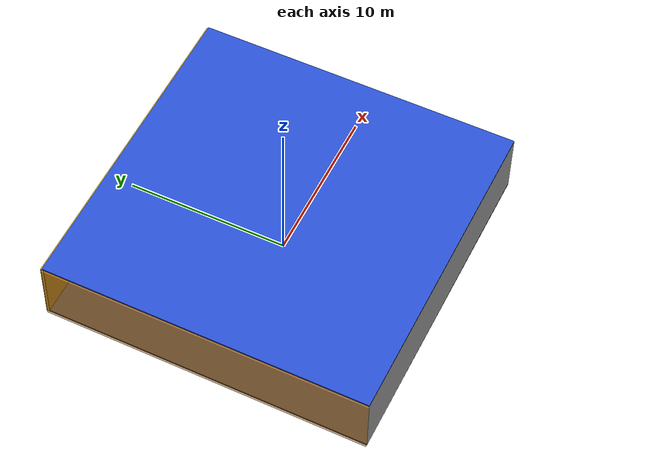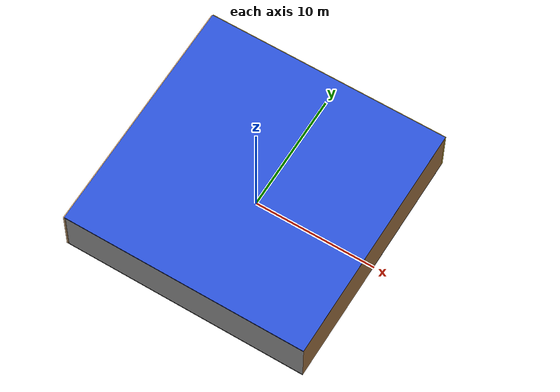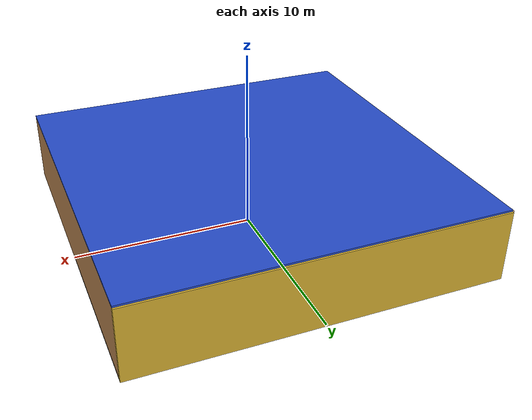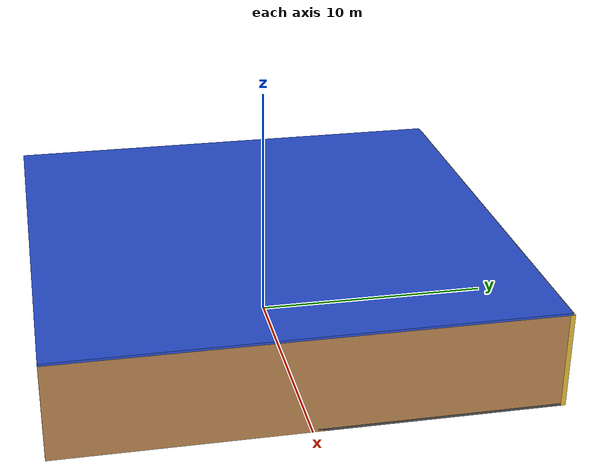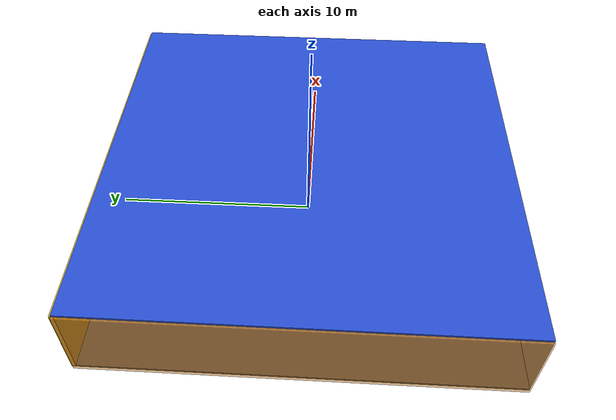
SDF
<sdf version="1.4">
 <world name="default">
  <physics type="ode">
   <max_step_size>0.001</max_step_size>
   <real_time_factor>1</real_time_factor>
   <real_time_update_rate>1000</real_time_update_rate>
   <gravity>0 0 -9.8</gravity>
  </physics>
  <scene><ambient>0.4 0.4 0.4 1</ambient><background>0.7 0.7 0.7 1</background><shadows>1</shadows></scene>
  <model name="Surrounding">
   <static>1</static>
   <link name="Ceiling">
    <collision name="Ceiling_Collision"><geometry><box><size>20 20 0.1</size></box></geometry></collision>
    <visual name="Ceiling_Visual">
     <geometry><box><size>20 20 0.1</size></box></geometry>
     <material>
      <script><uri>file://media/materials/scripts/gazebo.material</uri><name>Gazebo/BlueGlow</name></script>
     </material>
    </visual>
    <pose>0 0 4.05 0 0 0</pose>
   </link>
   <link name="Wall_South">
    <collision name="Wall_South_Collision">
     <geometry><box><size>20 0 4</size></box></geometry>
     <pose>0 0 2 0 -0 0</pose>
    </collision>
    <visual name="Wall_South_Visual">
     <pose>0 0 2 0 -0 0</pose>
     <geometry><box><size>20 0 4</size></box></geometry>
     <material>
      <script><uri>file://media/materials/scripts/gazebo.material</uri><name>Gazebo/LightOff</name></script>
     </material>
    </visual>
    <velocity_decay><linear>0</linear><angular>0</angular></velocity_decay>
    <pose>0 -10 0 0 -0 0</pose>
   </link>
   <link name="Wall_East">
    <collision name="Wall_21_Collision">
     <geometry><box><size>20 0 4</size></box></geometry>
     <pose>0 0 2 0 -0 0</pose>
    </collision>
    <visual name="Wall_21_Visual">
     <pose>0 0 2 0 -0 0</pose>
     <geometry><box><size>20 0 4</size></box></geometry>
     <material>
      <script><uri>file://media/materials/scripts/gazebo.material</uri><name>Gazebo/Wood</name></script>
     </material>
    </visual>
    <velocity_decay><linear>0</linear><angular>0</angular></velocity_decay>
    <pose>10 0 0 0 -0 1.5708</pose>
   </link>
   <link name="Wall_North">
    <collision name="Wall_22_Collision">
     <geometry><box><size>20 0.2 4</size></box></geometry>
     <pose>0 0 2 0 -0 0</pose>
    </collision>
    <visual name="Wall_22_Visual">
     <pose>0 0 2 0 -0 0</pose>
     <geometry><box><size>20 0.2 4</size></box></geometry>
     <material>
      <script><uri>file://media/materials/scripts/gazebo.material</uri><name>Gazebo/Gold</name></script>
     </material>
    </visual>
    <velocity_decay><linear>0</linear><angular>0</angular></velocity_decay>
    <pose>0 10 0 0 -0 0</pose>
   </link>
   <link name="Wall_West">
    <collision name="Wall_23_Collision">
     <geometry><box><size>20 0.2 4</size></box></geometry>
     <pose>0 0 2 0 -0 0</pose>
    </collision>
    <visual name="Wall_23_Visual">
     <pose>0 0 2 0 -0 0</pose>
     <geometry><box><size>20 0.2 4</size></box></geometry>
     <material>
      <script>
       <uri>file://media/materials/scripts/gazebo.material</uri>
       <name>Gazebo/OrangeTransparent</name>
      </script>
     </material>
    </visual>
    <velocity_decay><linear>0</linear><angular>0</angular></velocity_decay>
    <pose>-10 0 0 0 0 -1.5708</pose>
   </link>
   <link name="Ground_link">
    <collision name="collision">
     <pose>0 0 .05 0 -0 0</pose>
     <geometry><box><size>20 20 0.1</size></box></geometry>
    </collision>
    <visual name="visual">
     <pose>0 0 .05 0 -0 0</pose>
     <geometry><box><size>20 20 0.1</size></box></geometry>
     <material>
      <script><uri>file://media/materials/scripts/gazebo.material</uri><name>Gazebo/DarkGrey</name></script>
     </material>
    </visual>
   </link>
   <static>1</static>
  </model>
  <spherical_coordinates>
   <surface_model>EARTH_WGS84</surface_model>
   <latitude_deg>0</latitude_deg>
   <longitude_deg>0</longitude_deg>
   <elevation>0</elevation>
   <heading_deg>0</heading_deg>
  </spherical_coordinates>
  <light name="lightball_0" type="diffuse">
   <diffuse>0.8 0.8 0.8 1</diffuse>
   <specular>0.2 0.2 0.2 1</specular>
   <attenuation>
    <range>100</range>
    <constant>0.7</constant>
    <linear>0.01</linear>
    <quadratic>0.001</quadratic>
   </attenuation>
   <direction>-0.5 0.1 -0.9</direction>
   <pose>-1.76134400777 4.10151359504 3.68280194035 0 0 0</pose>
  </light>
  <light name="lightball_1" type="diffuse">
   <diffuse>0.8 0.8 0.8 1</diffuse>
   <specular>0.2 0.2 0.2 1</specular>
   <attenuation>
    <range>100</range>
    <constant>0.7</constant>
    <linear>0.01</linear>
    <quadratic>0.001</quadratic>
   </attenuation>
   <direction>-0.5 0.1 -0.9</direction>
   <pose>-2.45299535922 7.02851899914 2.70757342347 0 0 0</pose>
  </light>
  <light name="lightball_2" type="diffuse">
   <diffuse>0.8 0.8 0.8 1</diffuse>
   <specular>0.2 0.2 0.2 1</specular>
   <attenuation>
    <range>100</range>
    <constant>0.7</constant>
    <linear>0.01</linear>
    <quadratic>0.001</quadratic>
   </attenuation>
   <direction>-0.5 0.1 -0.9</direction>
   <pose>2.83767674327 -3.19028152611 1.12426306672 0 0 0</pose>
  </light>
  <light name="lightball_3" type="diffuse">
   <diffuse>0.8 0.8 0.8 1</diffuse>
   <specular>0.2 0.2 0.2 1</specular>
   <attenuation>
    <range>100</range>
    <constant>0.7</constant>
    <linear>0.01</linear>
    <quadratic>0.001</quadratic>
   </attenuation>
   <direction>-0.5 0.1 -0.9</direction>
   <pose>-3.02568677149 9.7943689387 1.11098478085 0 0 0</pose>
  </light>
  <light name="lightball_4" type="diffuse">
   <diffuse>0.8 0.8 0.8 1</diffuse>
   <specular>0.2 0.2 0.2 1</specular>
   <attenuation>
    <range>100</range>
    <constant>0.7</constant>
    <linear>0.01</linear>
    <quadratic>0.001</quadratic>
   </attenuation>
   <direction>-0.5 0.1 -0.9</direction>
   <pose>-8.4524354653 -1.20912731303 2.14489020774 0 0 0</pose>
  </light>
  <light name="lightball_5" type="diffuse">
   <diffuse>0.8 0.8 0.8 1</diffuse>
   <specular>0.2 0.2 0.2 1</specular>
   <attenuation>
    <range>100</range>
    <constant>0.7</constant>
    <linear>0.01</linear>
    <quadratic>0.001</quadratic>
   </attenuation>
   <direction>-0.5 0.1 -0.9</direction>
   <pose>-2.25802787477 0.8570688772 0.955943108442 0 0 0</pose>
  </light>
  <light name="lightball_6" type="diffuse">
   <diffuse>0.8 0.8 0.8 1</diffuse>
   <specular>0.2 0.2 0.2 1</specular>
   <attenuation>
    <range>100</range>
    <constant>0.7</constant>
    <linear>0.01</linear>
    <quadratic>0.001</quadratic>
   </attenuation>
   <direction>-0.5 0.1 -0.9</direction>
   <pose>8.21832983736 4.42219641822 1.64077074119 0 0 0</pose>
  </light>
  <light name="lightball_7" type="diffuse">
   <diffuse>0.8 0.8 0.8 1</diffuse>
   <specular>0.2 0.2 0.2 1</specular>
   <attenuation>
    <range>100</range>
    <constant>0.7</constant>
    <linear>0.01</linear>
    <quadratic>0.001</quadratic>
   </attenuation>
   <direction>-0.5 0.1 -0.9</direction>
   <pose>-1.14320897289 -6.35970798146 1.61258184298 0 0 0</pose>
  </light>
  <light name="lightball_8" type="diffuse">
   <diffuse>0.8 0.8 0.8 1</diffuse>
   <specular>0.2 0.2 0.2 1</specular>
   <attenuation>
    <range>100</range>
    <constant>0.7</constant>
    <linear>0.01</linear>
    <quadratic>0.001</quadratic>
   </attenuation>
   <direction>-0.5 0.1 -0.9</direction>
   <pose>-5.95396141913 1.25063504624 3.26073155152 0 0 0</pose>
  </light>
  <light name="lightball_9" type="diffuse">
   <diffuse>0.8 0.8 0.8 1</diffuse>
   <specular>0.2 0.2 0.2 1</specular>
   <attenuation>
    <range>100</range>
    <constant>0.7</constant>
    <linear>0.01</linear>
    <quadratic>0.001</quadratic>
   </attenuation>
   <direction>-0.5 0.1 -0.9</direction>
   <pose>-0.0668330918433 5.2935206592 1.52907596376 0 0 0</pose>
  </light>
  <light name="lightball_10" type="diffuse">
   <diffuse>0.8 0.8 0.8 1</diffuse>
   <specular>0.2 0.2 0.2 1</specular>
   <attenuation>
    <range>100</range>
    <constant>0.7</constant>
    <linear>0.01</linear>
    <quadratic>0.001</quadratic>
   </attenuation>
   <direction>-0.5 0.1 -0.9</direction>
   <pose>-7.30034755181 2.96096556644 2.87977235314 0 0 0</pose>
  </light>
  <light name="lightball_11" type="diffuse">
   <diffuse>0.8 0.8 0.8 1</diffuse>
   <specular>0.2 0.2 0.2 1</specular>
   <attenuation>
    <range>100</range>
    <constant>0.7</constant>
    <linear>0.01</linear>
    <quadratic>0.001</quadratic>
   </attenuation>
   <direction>-0.5 0.1 -0.9</direction>
   <pose>6.58422319176 3.8319549589 0.568684077203 0 0 0</pose>
  </light>
  <light name="lightball_12" type="diffuse">
   <diffuse>0.8 0.8 0.8 1</diffuse>
   <specular>0.2 0.2 0.2 1</specular>
   <attenuation>
    <range>100</range>
    <constant>0.7</constant>
    <linear>0.01</linear>
    <quadratic>0.001</quadratic>
   </attenuation>
   <direction>-0.5 0.1 -0.9</direction>
   <pose>7.4996994661 5.10866953242 1.96617204124 0 0 0</pose>
  </light>
  <light name="lightball_13" type="diffuse">
   <diffuse>0.8 0.8 0.8 1</diffuse>
   <specular>0.2 0.2 0.2 1</specular>
   <attenuation>
    <range>100</range>
    <constant>0.7</constant>
    <linear>0.01</linear>
    <quadratic>0.001</quadratic>
   </attenuation>
   <direction>-0.5 0.1 -0.9</direction>
   <pose>-1.07524368258 4.00401012961 1.80443078001 0 0 0</pose>
  </light>
  <include>
   <uri>model://construction_cone</uri>
   <pose>-6.87279326394 5.19800188141 0 0 0 0.317684911059</pose>
  </include>
  <include><uri>model://cabinet</uri><pose>-4.99373463778 -1.72447780895 0 0 0 1.36390935047</pose></include>
  <include>
   <uri>model://textured_shapes</uri>
   <pose>-0.734131920767 -4.37756921887 0 0 0 1.92314249719</pose>
  </include>
  <include><uri>model://table</uri><pose>-1.71807078324 7.19210783012 0 0 0 0.342898238739</pose></include>
  <include><uri>model://cabinet</uri><pose>1.38585256402 4.43303619951 0 0 0 2.40517963434</pose></include>
  <include>
   <uri>model://textured_shapes</uri>
   <pose>0.713131979844 8.0221389583 0 0 0 1.39249211377</pose>
  </include>
  <include>
   <uri>model://construction_cone</uri>
   <pose>8.07141575222 7.39104584587 0 0 0 2.77352304951</pose>
  </include>
 </world>
</sdf>

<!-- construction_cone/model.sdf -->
<sdf version="1.5">
  <model name="Construction Cone">
    <link name="link">
      <collision name="collision">
        <geometry>
          <mesh>
            <scale>10 10 10</scale>
            <uri>file://isr-testbed/construction_cone/meshes/construction_cone.dae</uri>
          </mesh>
        </geometry>
      </collision>
      <visual name="visual">
        <geometry>
          <mesh>
            <scale>10 10 10</scale>
            <uri>file://isr-testbed/construction_cone/meshes/construction_cone.dae</uri>
          </mesh>
        </geometry>
      </visual>
    </link>
  </model>
</sdf>

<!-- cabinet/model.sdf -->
<sdf version="1.5">
  <model name="cabinet">
    <static>true</static>
    <link name="cabinet_bottom_plate">
      <inertial>
        <pose>0 0 -1 0 0 0</pose>
        <inertia>
          <ixx>2.050000</ixx>
          <ixy>0</ixy>
          <ixz>0</ixz>
          <iyy>2.050000</iyy>
          <iyz>0</iyz>
          <izz>2.050000</izz>
        </inertia>
        <mass>25.000000</mass>
      </inertial>
      <collision name="cabinet_bottom_plate_geom">
        <pose>0 0 0.010000 0 0 0</pose>
        <geometry>
          <box>
            <size>0.450000 0.450000 0.020000</size>
          </box>
        </geometry>
      </collision>
      <visual name="cabinet_bottom_plate_geom_visual">
        <pose>0 0 0.010000 0 0 0</pose>
        <geometry>
          <box>
            <size>0.450000 0.450000 0.020000</size>
          </box>
        </geometry>
        <material>
          <script>
            <uri>model://media/materials/scripts/gazebo.material</uri>
            <name>Gazebo/Wood</name>
          </script>
        </material>
      </visual>
      <collision name="cabinet_bottom_plate_geom_cabinet_back_plate">
        <pose>0.235000 0 0.510000 0 0 0</pose>
        <geometry>
          <box>
            <size>0.020000 0.450000 1.020000</size>
          </box>
        </geometry>
      </collision>
      <visual name="cabinet_bottom_plate_geom_cabinet_back_plate_visual">
        <pose>0.235000 0 0.510000 0 0 0</pose>
        <geometry>
          <box>
            <size>0.020000 0.450000 1.020000</size>
          </box>
        </geometry>
        <material>
          <script>
            <uri>model://media/materials/scripts/gazebo.material</uri>
            <name>Gazebo/Wood</name>
          </script>
        </material>
      </visual>
      <collision name="cabinet_bottom_plate_geom_cabinet_left_plate">
        <pose>0 0.235000 0.510000 0 0 0</pose>
        <geometry>
          <box>
            <size>0.450000 0.020000 1.020000</size>
          </box>
        </geometry>
      </collision>
      <visual name="cabinet_bottom_plate_geom_cabinet_left_plate_visual">
        <pose>0 0.235000 0.510000 0 0 0</pose>
        <geometry>
          <box>
            <size>0.450000 0.020000 1.020000</size>
          </box>
        </geometry>
        <material>
          <script>
            <uri>model://media/materials/scripts/gazebo.material</uri>
            <name>Gazebo/Wood</name>
          </script>
        </material>
      </visual>
      <collision name="cabinet_bottom_plate_geom_cabinet_middle_plate">
        <pose>0 0 0.510000 0 0 0</pose>
        <geometry>
          <box>
            <size>0.450000 0.450000 0.020000</size>
          </box>
        </geometry>
      </collision>
      <visual name="cabinet_bottom_plate_geom_cabinet_middle_plate_visual">
        <pose>0 0 0.510000 0 0 0</pose>
        <geometry>
          <box>
            <size>0.450000 0.450000 0.020000</size>
          </box>
        </geometry>
        <material>
          <script>
            <uri>model://media/materials/scripts/gazebo.material</uri>
            <name>Gazebo/Wood</name>
          </script>
        </material>
      </visual>
      <collision name="cabinet_bottom_plate_geom_cabinet_right_plate">
        <pose>0 -0.235000 0.510000 0 0 0</pose>
        <geometry>
          <box>
            <size>0.450000 0.020000 1.020000</size>
          </box>
        </geometry>
      </collision>
      <visual name="cabinet_bottom_plate_geom_cabinet_right_plate_visual">
        <pose>0 -0.235000 0.510000 0 0 0</pose>
        <geometry>
          <box>
            <size>0.450000 0.020000 1.020000</size>
          </box>
        </geometry>
        <material>
          <script>
            <uri>model://media/materials/scripts/gazebo.material</uri>
            <name>Gazebo/Wood</name>
          </script>
        </material>
      </visual>
      <collision name="cabinet_bottom_plate_geom_cabinet_top_plate">
        <pose>0 0 1.010000 0 0 0</pose>
        <geometry>
          <box>
            <size>0.450000 0.450000 0.020000</size>
          </box>
        </geometry>
      </collision>
      <visual name="cabinet_bottom_plate_geom_cabinet_top_plate_visual">
        <pose>0 0 1.010000 0 0 0</pose>
        <geometry>
          <box>
            <size>0.450000 0.450000 0.020000</size>
          </box>
        </geometry>
        <material>
          <script>
            <uri>model://media/materials/scripts/gazebo.material</uri>
            <name>Gazebo/Wood</name>
          </script>
        </material>
      </visual>
    </link>
  </model>
</sdf>

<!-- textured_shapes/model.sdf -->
<sdf version="1.6">
  <model name="textured_shapes">
    <pose>0 0 0.5 0 0 0</pose>
    <link name="box">
      <pose>0 -1.5 0 0 0 0</pose>
      <collision name="collision">
        <geometry>
          <box>
            <size>1 1 1</size>
          </box>
        </geometry>
      </collision>
      <visual name="visual">
        <geometry>
          <box>
            <size>1 1 1</size>
          </box>
        </geometry>
        <material>
          <script>
            <uri>model://../model_source/models/textured_shapes/materials/scripts</uri>
            <uri>model://../model_source/models/textured_shapes/materials/textures</uri>
            <name>TexturedShape/Squares</name>
          </script>
        </material>
      </visual>
    </link>
    <link name="sphere">
      <collision name="collision">
        <geometry>
          <sphere>
            <radius>0.5</radius>
          </sphere>
        </geometry>
      </collision>
      <visual name="visual">
        <geometry>
          <sphere>
            <radius>0.5</radius>
          </sphere>
        </geometry>
        <material>
          <script>
            <uri>model://../model_source/models/textured_shapes/materials/scripts</uri>
            <uri>model://../model_source/models/textured_shapes/materials/textures</uri>
            <name>TexturedShape/Squares</name>
          </script>
        </material>
      </visual>
    </link>
    <link name="cylinder">
      <pose>0 1.5 0 0 0 0</pose>
      <collision name="collision">
        <geometry>
          <cylinder>
            <radius>0.5</radius>
            <length>1</length>
          </cylinder>
        </geometry>
      </collision>
      <visual name="visual">
        <geometry>
          <cylinder>
            <radius>0.5</radius>
            <length>1</length>
          </cylinder>
        </geometry>
        <material>
          <script>
            <uri>model://../model_source/models/textured_shapes/materials/scripts</uri>
            <uri>model://../model_source/models/textured_shapes/materials/textures</uri>
            <name>TexturedShape/Squares</name>
          </script>
        </material>
      </visual>
    </link>
  </model>
</sdf>

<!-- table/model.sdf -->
<sdf version="1.5">
  <model name="table">
    <static>true</static>
    <link name="link">
      <collision name="surface">
        <pose>0 0 1.0 0 0 0</pose>
        <geometry>
          <box>
            <size>1.5 0.8 0.03</size>
          </box>
        </geometry>
        <surface>
          <friction>
            <ode>
              <mu>0.6</mu>
              <mu2>0.6</mu2>
            </ode>
          </friction>
        </surface>
      </collision>
      <visual name="visual1">
        <pose>0 0 1.0 0 0 0</pose>
        <geometry>
          <box>
            <size>1.5 0.8 0.03</size>
          </box>
        </geometry>
        <material>
          <script>
            <uri>model://media/materials/scripts/gazebo.material</uri>
            <name>Gazebo/Wood</name>
          </script>
        </material>
      </visual>
      <collision name="front_left_leg">
        <pose>0.68 0.38 0.5 0 0 0</pose>
        <geometry>
          <cylinder>
            <radius>0.02</radius>
            <length>1.0</length>
          </cylinder>
        </geometry>
      </collision>
      <visual name="front_left_leg">
        <pose>0.68 0.38 0.5 0 0 0</pose>
        <geometry>
          <cylinder>
            <radius>0.02</radius>
            <length>1.0</length>
          </cylinder>
        </geometry>
        <material>
          <script>
            <uri>model://media/materials/scripts/gazebo.material</uri>
            <name>Gazebo/Grey</name>
          </script>
        </material>
      </visual>
      <collision name="front_right_leg">
        <pose>0.68 -0.38 0.5 0 0 0</pose>
        <geometry>
          <cylinder>
            <radius>0.02</radius>
            <length>1.0</length>
          </cylinder>
        </geometry>
      </collision>
      <visual name="front_right_leg">
        <pose>0.68 -0.38 0.5 0 0 0</pose>
        <geometry>
          <cylinder>
            <radius>0.02</radius>
            <length>1.0</length>
          </cylinder>
        </geometry>
        <material>
          <script>
            <uri>model://media/materials/scripts/gazebo.material</uri>
            <name>Gazebo/Grey</name>
          </script>
        </material>
      </visual>
      <collision name="back_right_leg">
        <pose>-0.68 -0.38 0.5 0 0 0</pose>
        <geometry>
          <cylinder>
            <radius>0.02</radius>
            <length>1.0</length>
          </cylinder>
        </geometry>
      </collision>
      <visual name="back_right_leg">
        <pose>-0.68 -0.38 0.5 0 0 0</pose>
        <geometry>
          <cylinder>
            <radius>0.02</radius>
            <length>1.0</length>
          </cylinder>
        </geometry>
        <material>
          <script>
            <uri>model://media/materials/scripts/gazebo.material</uri>
            <name>Gazebo/Grey</name>
          </script>
        </material>
      </visual>
      <collision name="back_left_leg">
        <pose>-0.68 0.38 0.5 0 0 0</pose>
        <geometry>
          <cylinder>
            <radius>0.02</radius>
            <length>1.0</length>
          </cylinder>
        </geometry>
      </collision>
      <visual name="back_left_leg">
        <pose>-0.68 0.38 0.5 0 0 0</pose>
        <geometry>
          <cylinder>
            <radius>0.02</radius>
            <length>1.0</length>
          </cylinder>
        </geometry>
        <material>
          <script>
            <uri>model://media/materials/scripts/gazebo.material</uri>
            <name>Gazebo/Grey</name>
          </script>
        </material>
      </visual>
    </link>
  </model>
</sdf>
